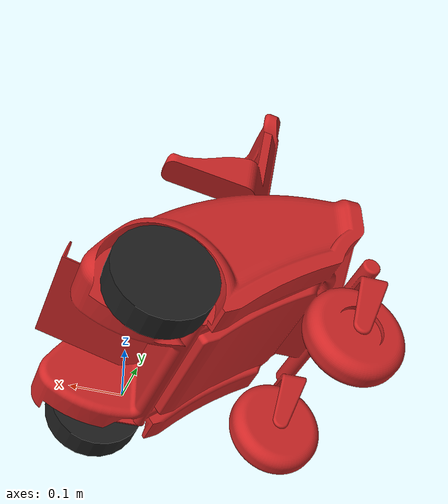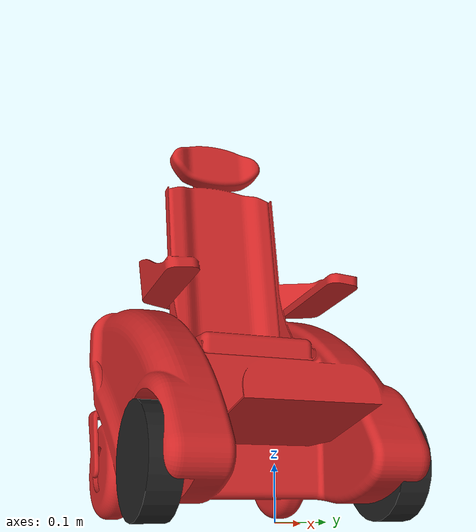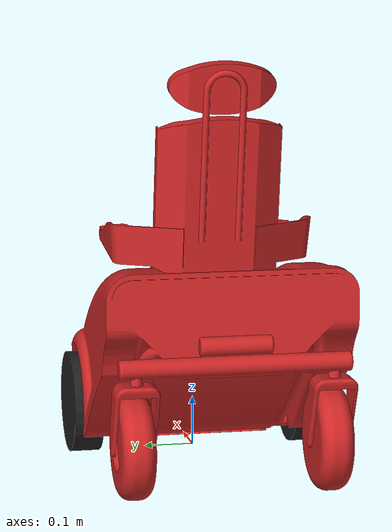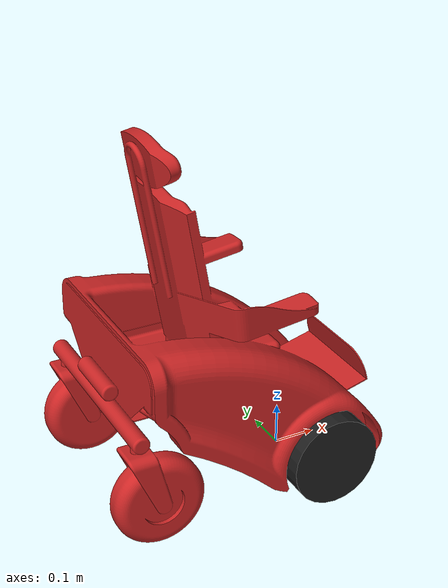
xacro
<?xml version="1.0" ?>
<robot name="wizzybug" xmlns:xacro="http://ros.org/wiki/xacro">
  <xacro:include filename="$(find wizzybug_description)/urdf/common_properties.xacro"/>

  <link name="base_footprint"/>

  <joint name="base_joint" type="fixed">
    <parent link="base_footprint"/>
    <child link="base_link"/>
    <origin xyz="0.0 0.0 0.1025" rpy="0 0 0"/>
  </joint>

  <link name="base_link">
    <visual>
      <origin xyz="-0.09 -0.195 -0.05" rpy="0 0 0"/>
      <geometry>
				<mesh filename="package://wizzibug_description/meshes/Wizzibug_no_wheels.STL" scale="0.001 0.001 0.001"/>
      </geometry>
      <material name="red"/>
    </visual>

    <collision>
      <origin xyz="0 0 0" rpy="0 0 0"/>
      <geometry>
        <box size="1.0 1.0 1.0"/>
      </geometry>
    </collision>

    <inertial>
      <origin xyz="0 0 0" rpy="0 0 0"/>
      <mass value="30"/>
      <inertia ixx="1.0" ixy="0.0" ixz="0.0"
               iyy="1.0" iyz="0.0"
               izz="1.0" />
    </inertial>
  </link>

<!-- ################################Left Wheel##############################################-->
  <link name="wheel_left_link">
    <visual>
      <geometry>
        <cylinder length="0.06" radius="0.1025"/>
      </geometry>
      <origin rpy="1.5708 0 0" xyz="0 0 0"/>
      <material name="black"/>
    </visual>
    <collision>
      <geometry>
        <cylinder length="0.06" radius="0.1025"/>
      </geometry>
      <origin rpy="1.5708 0 0" xyz="0 0 0"/>
    </collision>
    <inertial>
      <mass value="1"/>
      <inertia ixx="1.0" ixy="0.0" ixz="0.0" iyy="1.0" iyz="0.0" izz="1.0"/>
    </inertial>
  </link>
  <joint name="wheel_left_joint" type="continuous">
    <parent link="base_link"/>
    <child link="wheel_left_link"/>
    <origin xyz="0.0 0.23 0.0" rpy="0 0 0"/>
    <axis xyz="0 1 0"/>
  </joint>

<!-- ################################Right Wheel##############################################-->
  <link name="wheel_right_link">
    <visual>
      <geometry>
        <cylinder length="0.06" radius="0.1025"/>
      </geometry>
      <origin rpy="1.5708 0 0" xyz="0 0 0"/>
      <material name="black"/>
    </visual>
    <collision>
      <geometry>
        <cylinder length="0.06" radius="0.1025"/>
      </geometry>
      <origin rpy="1.5708 0 0" xyz="0 0 0"/>
    </collision>
    <inertial>
      <mass value="${base_mass}"/>
      <inertia ixx="1.0"   iyy="1.0"  izz="1.0"/>
    </inertial>
  </link>

  <joint name="wheel_right_joint" type="continuous">
    <parent link="base_link"/>
    <child link="wheel_right_link"/>
    <origin xyz="0.0 -0.23 0.0" rpy="0 0 0"/>

  </joint>

  <joint name="imu_joint" type="fixed">
    <parent link="base_link"/>
    <child link="imu_link"/>
    <origin xyz="0.0 0 0.0" rpy="0 0 0"/>
  </joint>

  <link name="imu_link"/>

</robot>
